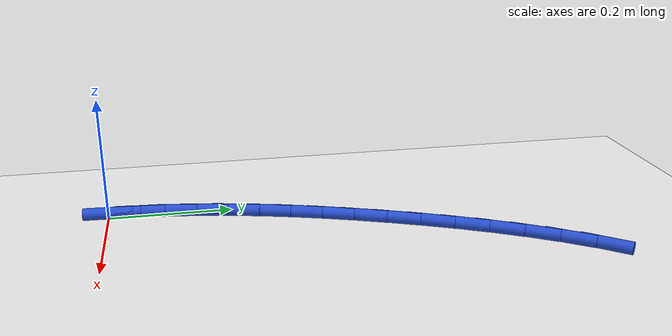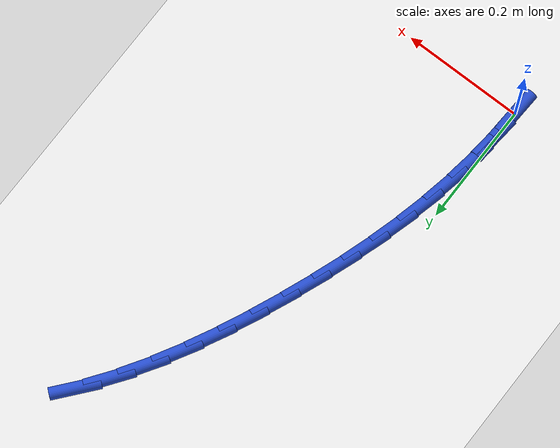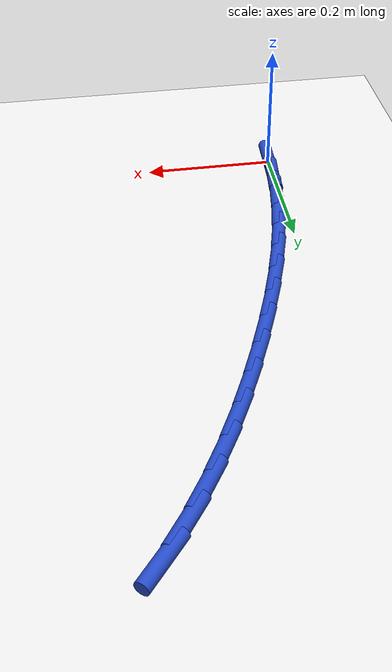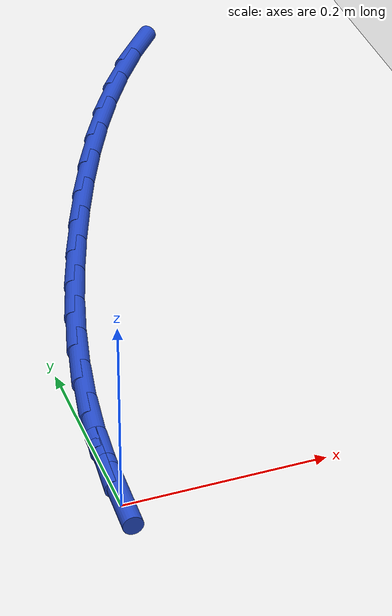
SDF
<sdf version="1.6">
 <world name="default">
  <model name="ground_plane">
   <static>1</static>
   <link name="link">
    <collision name="collision">
     <geometry><plane><normal>0 0 1</normal><size>100 100</size></plane></geometry>
     <surface><friction><ode><mu>100</mu><mu2>50</mu2></ode></friction></surface>
    </collision>
    <visual name="visual">
     <cast_shadows>0</cast_shadows>
     <geometry><plane><normal>0 0 1</normal><size>100 100</size></plane></geometry>
     <material>
      <script><uri>file://media/materials/scripts/gazebo.material</uri><name>Gazebo/WhiteGlow</name></script>
     </material>
    </visual>
   </link>
  </model>
  <model name="line">
   <link name="link_0">
    <pose>4.85722573273506e-17 -1.5265566588595902e-16 0.01 0 1.57 1.5208682313684743</pose>
    <collision name="collision">
     <geometry><cylinder><radius>0.01</radius><length>0.08</length></cylinder></geometry>
    </collision>
    <visual name="visual">
     <material>
      <script><name>Gazebo/Blue</name><uri>file://media/materials/scripts/gazebo.material</uri></script>
     </material>
     <geometry><cylinder><radius>0.01</radius><length>0.08</length></cylinder></geometry>
    </visual>
   </link>
   <link name="link_1">
    <pose>0.0026078376806821296 0.05218845914660143 0.01 0 1.57 1.467295530697326</pose>
    <collision name="collision">
     <geometry><cylinder><radius>0.01</radius><length>0.08</length></cylinder></geometry>
    </collision>
    <visual name="visual">
     <material>
      <script><name>Gazebo/Blue</name><uri>file://media/materials/scripts/gazebo.material</uri></script>
     </material>
     <geometry><cylinder><radius>0.01</radius><length>0.08</length></cylinder></geometry>
    </visual>
   </link>
   <link name="link_2">
    <pose>0.007972753262551802 0.10383777027473558 0.01 0 1.57 1.4166332415653873</pose>
    <collision name="collision">
     <geometry><cylinder><radius>0.01</radius><length>0.08</length></cylinder></geometry>
    </collision>
    <visual name="visual">
     <material>
      <script><name>Gazebo/Blue</name><uri>file://media/materials/scripts/gazebo.material</uri></script>
     </material>
     <geometry><cylinder><radius>0.01</radius><length>0.08</length></cylinder></geometry>
    </visual>
   </link>
   <link name="link_3">
    <pose>0.01592972599528196 0.1550422256092562 0.01 0 1.57 1.3693722985429952</pose>
    <collision name="collision">
     <geometry><cylinder><radius>0.01</radius><length>0.08</length></cylinder></geometry>
    </collision>
    <visual name="visual">
     <material>
      <script><name>Gazebo/Blue</name><uri>file://media/materials/scripts/gazebo.material</uri></script>
     </material>
     <geometry><cylinder><radius>0.01</radius><length>0.08</length></cylinder></geometry>
    </visual>
   </link>
   <link name="link_4">
    <pose>0.02631373512854548 0.2058961173750172 0.01 0 1.57 1.3258805427027616</pose>
    <collision name="collision">
     <geometry><cylinder><radius>0.01</radius><length>0.08</length></cylinder></geometry>
    </collision>
    <visual name="visual">
     <material>
      <script><name>Gazebo/Blue</name><uri>file://media/materials/scripts/gazebo.material</uri></script>
     </material>
     <geometry><cylinder><radius>0.01</radius><length>0.08</length></cylinder></geometry>
    </visual>
   </link>
   <link name="link_5">
    <pose>0.038959759912015265 0.25649373779687257 0.01 0 1.57 1.286406184170897</pose>
    <collision name="collision">
     <geometry><cylinder><radius>0.01</radius><length>0.08</length></cylinder></geometry>
    </collision>
    <visual name="visual">
     <material>
      <script><name>Gazebo/Blue</name><uri>file://media/materials/scripts/gazebo.material</uri></script>
     </material>
     <geometry><cylinder><radius>0.01</radius><length>0.08</length></cylinder></geometry>
    </visual>
   </link>
   <link name="link_6">
    <pose>0.053702779595364195 0.3069293790996761 0.01 0 1.57 1.251089965797741</pose>
    <collision name="collision">
     <geometry><cylinder><radius>0.01</radius><length>0.08</length></cylinder></geometry>
    </collision>
    <visual name="visual">
     <material>
      <script><name>Gazebo/Blue</name><uri>file://media/materials/scripts/gazebo.material</uri></script>
     </material>
     <geometry><cylinder><radius>0.01</radius><length>0.08</length></cylinder></geometry>
    </visual>
   </link>
   <link name="link_7">
    <pose>0.07037777342826515 0.35729733350828197 0.01 0 1.57 1.2199823960051726</pose>
    <collision name="collision">
     <geometry><cylinder><radius>0.01</radius><length>0.08</length></cylinder></geometry>
    </collision>
    <visual name="visual">
     <material>
      <script><name>Gazebo/Blue</name><uri>file://media/materials/scripts/gazebo.material</uri></script>
     </material>
     <geometry><cylinder><radius>0.01</radius><length>0.08</length></cylinder></geometry>
    </visual>
   </link>
   <link name="link_8">
    <pose>0.08881972066039102 0.4076918932475438 0.01 0 1.57 1.1929046623063255</pose>
    <collision name="collision">
     <geometry><cylinder><radius>0.01</radius><length>0.08</length></cylinder></geometry>
    </collision>
    <visual name="visual">
     <material>
      <script><name>Gazebo/Blue</name><uri>file://media/materials/scripts/gazebo.material</uri></script>
     </material>
     <geometry><cylinder><radius>0.01</radius><length>0.08</length></cylinder></geometry>
    </visual>
   </link>
   <link name="link_9">
    <pose>0.10886869613879971 0.4581968952906872 0.01 0 1.57 1.1657548896957421</pose>
    <collision name="collision">
     <geometry><cylinder><radius>0.01</radius><length>0.08</length></cylinder></geometry>
    </collision>
    <visual name="visual">
     <material>
      <script><name>Gazebo/Blue</name><uri>file://media/materials/scripts/gazebo.material</uri></script>
     </material>
     <geometry><cylinder><radius>0.01</radius><length>0.08</length></cylinder></geometry>
    </visual>
   </link>
   <link name="link_10">
    <pose>0.1304930740329941 0.5086329294195757 0.01 0 1.57 1.1339866158312886</pose>
    <collision name="collision">
     <geometry><cylinder><radius>0.01</radius><length>0.08</length></cylinder></geometry>
    </collision>
    <visual name="visual">
     <material>
      <script><name>Gazebo/Blue</name><uri>file://media/materials/scripts/gazebo.material</uri></script>
     </material>
     <geometry><cylinder><radius>0.01</radius><length>0.08</length></cylinder></geometry>
    </visual>
   </link>
   <link name="link_11">
    <pose>0.15379601572929497 0.558544026229456 0.01 0 1.57 1.0968578496795356</pose>
    <collision name="collision">
     <geometry><cylinder><radius>0.01</radius><length>0.08</length></cylinder></geometry>
    </collision>
    <visual name="visual">
     <material>
      <script><name>Gazebo/Blue</name><uri>file://media/materials/scripts/gazebo.material</uri></script>
     </material>
     <geometry><cylinder><radius>0.01</radius><length>0.08</length></cylinder></geometry>
    </visual>
   </link>
   <link name="link_12">
    <pose>0.1788870767802631 0.6074610966336335 0.01 0 1.57 1.053682933256067</pose>
    <collision name="collision">
     <geometry><cylinder><radius>0.01</radius><length>0.08</length></cylinder></geometry>
    </collision>
    <visual name="visual">
     <material>
      <script><name>Gazebo/Blue</name><uri>file://media/materials/scripts/gazebo.material</uri></script>
     </material>
     <geometry><cylinder><radius>0.01</radius><length>0.08</length></cylinder></geometry>
    </visual>
   </link>
   <link name="link_13">
    <pose>0.20587581273845934 0.6549150515454136 0.01 0 1.57 1.003635997291884</pose>
    <collision name="collision">
     <geometry><cylinder><radius>0.01</radius><length>0.08</length></cylinder></geometry>
    </collision>
    <visual name="visual">
     <material>
      <script><name>Gazebo/Blue</name><uri>file://media/materials/scripts/gazebo.material</uri></script>
     </material>
     <geometry><cylinder><radius>0.01</radius><length>0.08</length></cylinder></geometry>
    </visual>
   </link>
   <link name="link_14">
    <pose>0.2348717791564443 0.7004368018781018 0.01 0 1.57 0.9457656126940531</pose>
    <collision name="collision">
     <geometry><cylinder><radius>0.01</radius><length>0.08</length></cylinder></geometry>
    </collision>
    <visual name="visual">
     <material>
      <script><name>Gazebo/Blue</name><uri>file://media/materials/scripts/gazebo.material</uri></script>
     </material>
     <geometry><cylinder><radius>0.01</radius><length>0.08</length></cylinder></geometry>
    </visual>
   </link>
   <link name="link_15">
    <pose>0.265984531586779 0.7435572585450035 0.01 0 1.57 0.879036527268992</pose>
    <collision name="collision">
     <geometry><cylinder><radius>0.01</radius><length>0.08</length></cylinder></geometry>
    </collision>
    <visual name="visual">
     <material>
      <script><name>Gazebo/Blue</name><uri>file://media/materials/scripts/gazebo.material</uri></script>
     </material>
     <geometry><cylinder><radius>0.01</radius><length>0.08</length></cylinder></geometry>
    </visual>
   </link>
   <link name="link_141">
    <pose>0.0026304823904821015 0.052114102173493305 0.01 0 1.57 1.5203636850602662</pose>
    <collision name="collision">
     <geometry><cylinder><radius>0.01</radius><length>0.08</length></cylinder></geometry>
    </collision>
    <visual name="visual">
     <material>
      <script><name>Gazebo/Blue</name><uri>file://media/materials/scripts/gazebo.material</uri></script>
     </material>
     <geometry><cylinder><radius>0.01</radius><length>0.08</length></cylinder></geometry>
    </visual>
   </link>
  </model>
 </world>
</sdf>
